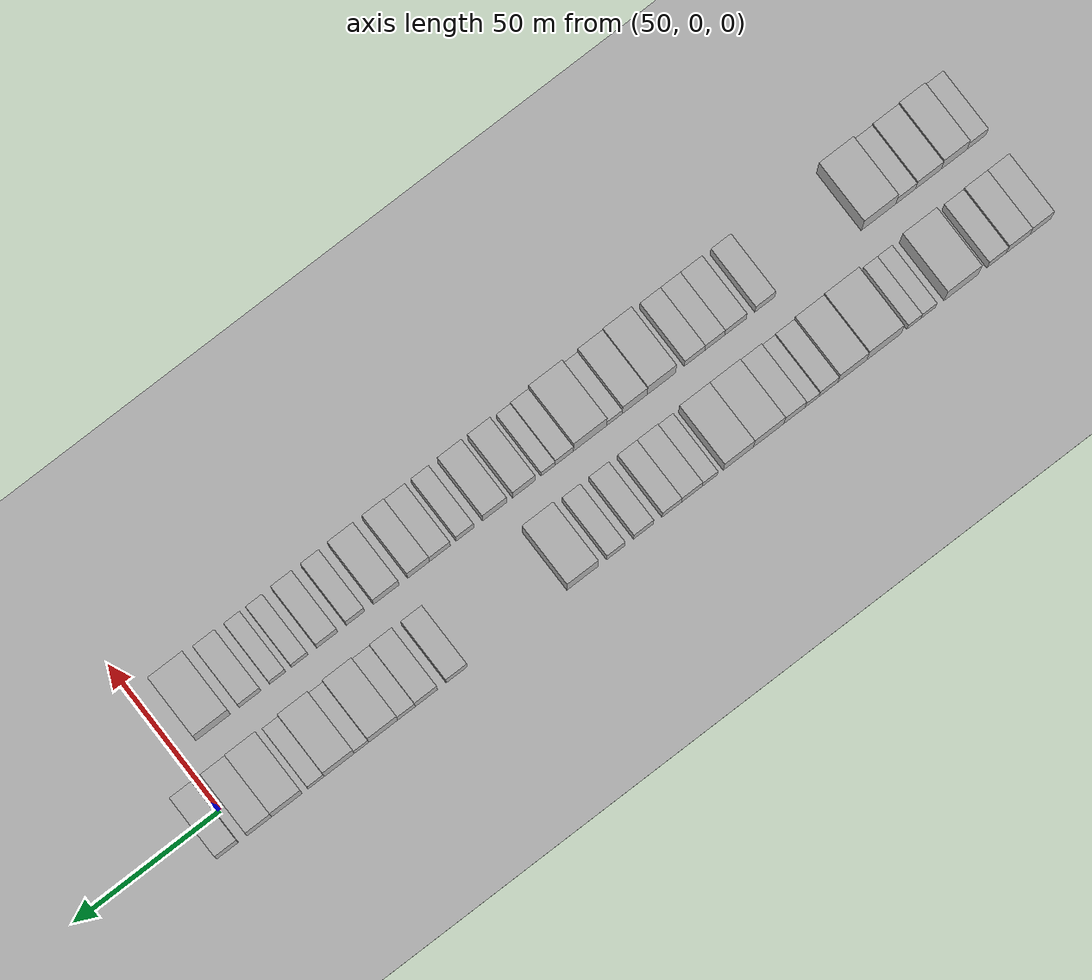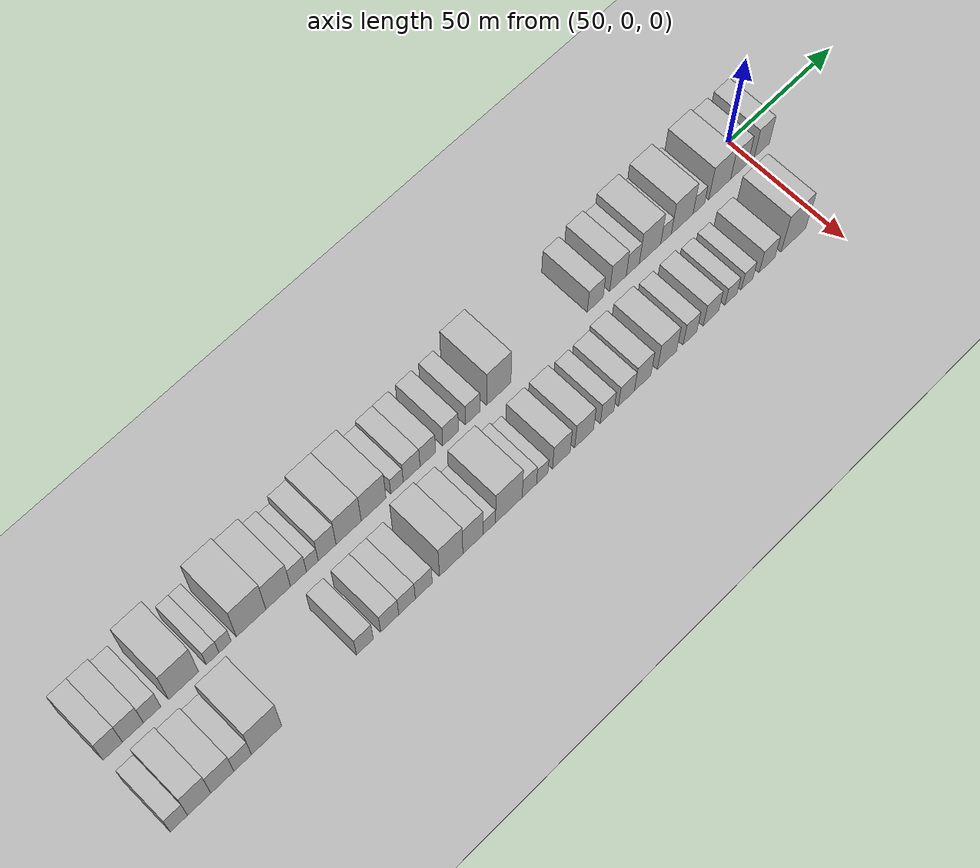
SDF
<sdf version="1.6">
 <world name="default">
  <include><name>ground_plane_1</name><uri>model://HANNAS_ground_plane</uri></include>
  <include>
   <name>ground_plane_2</name>
   <uri>model://HANNAS_ground_plane</uri>
   <pose>100 0 0  0 0 0</pose>
  </include>
  <model name="building_1">
   <static>1</static>
   <pose>50.0000 -274.2942 0 0.000000 0.000000 0.000000</pose>
   <link name="link">
    <pose>0 0 9.00 0 0 0</pose>
    <collision name="collision"><geometry><box><size>20.0000 7.4115 18.0000</size></box></geometry></collision>
    <visual name="visual">
     <cast_shadows>0</cast_shadows>
     <geometry><box><size>20.0000 7.4115 18.0000</size></box></geometry>
     <material>
      <script>
       <uri>model://HANNAS_wall/materials/scripts</uri>
       <uri>model://HANNAS_wall/materials/textures</uri>
       <name>vrc/HANNAS_wall</name>
      </script>
     </material>
    </visual>
   </link>
  </model>
  <model name="building_2">
   <static>1</static>
   <pose>50.0000 -266.5781 0 0.000000 0.000000 0.000000</pose>
   <link name="link">
    <pose>0 0 9.00 0 0 0</pose>
    <collision name="collision"><geometry><box><size>20.0000 8.0207 18.0000</size></box></geometry></collision>
    <visual name="visual">
     <cast_shadows>0</cast_shadows>
     <geometry><box><size>20.0000 8.0207 18.0000</size></box></geometry>
     <material>
      <script>
       <uri>model://HANNAS_wall/materials/scripts</uri>
       <uri>model://HANNAS_wall/materials/textures</uri>
       <name>vrc/HANNAS_wall</name>
      </script>
     </material>
    </visual>
   </link>
  </model>
  <model name="building_3">
   <static>1</static>
   <pose>50.0000 -259.1972 0 0.000000 0.000000 0.000000</pose>
   <link name="link">
    <pose>0 0 7.50 0 0 0</pose>
    <collision name="collision"><geometry><box><size>20.0000 6.7413 15.0000</size></box></geometry></collision>
    <visual name="visual">
     <cast_shadows>0</cast_shadows>
     <geometry><box><size>20.0000 6.7413 15.0000</size></box></geometry>
     <material>
      <script>
       <uri>model://HANNAS_wall/materials/scripts</uri>
       <uri>model://HANNAS_wall/materials/textures</uri>
       <name>vrc/HANNAS_wall</name>
      </script>
     </material>
    </visual>
   </link>
  </model>
  <model name="building_4">
   <static>1</static>
   <pose>50.0000 -246.9662 0 0.000000 0.000000 0.000000</pose>
   <link name="link">
    <pose>0 0 12.00 0 0 0</pose>
    <collision name="collision"><geometry><box><size>20.0000 11.7208 24.0000</size></box></geometry></collision>
    <visual name="visual">
     <cast_shadows>0</cast_shadows>
     <geometry><box><size>20.0000 11.7208 24.0000</size></box></geometry>
     <material>
      <script>
       <uri>model://HANNAS_wall/materials/scripts</uri>
       <uri>model://HANNAS_wall/materials/textures</uri>
       <name>vrc/HANNAS_wall</name>
      </script>
     </material>
    </visual>
   </link>
  </model>
  <model name="building_5">
   <static>1</static>
   <pose>50.0000 -235.5989 0 0.000000 0.000000 0.000000</pose>
   <link name="link">
    <pose>0 0 6.00 0 0 0</pose>
    <collision name="collision"><geometry><box><size>20.0000 5.0137 12.0000</size></box></geometry></collision>
    <visual name="visual">
     <cast_shadows>0</cast_shadows>
     <geometry><box><size>20.0000 5.0137 12.0000</size></box></geometry>
     <material>
      <script>
       <uri>model://HANNAS_wall/materials/scripts</uri>
       <uri>model://HANNAS_wall/materials/textures</uri>
       <name>vrc/HANNAS_wall</name>
      </script>
     </material>
    </visual>
   </link>
  </model>
  <model name="building_6">
   <static>1</static>
   <pose>50.0000 -230.6536 0 0.000000 0.000000 0.000000</pose>
   <link name="link">
    <pose>0 0 6.00 0 0 0</pose>
    <collision name="collision"><geometry><box><size>20.0000 4.8768 12.0000</size></box></geometry></collision>
    <visual name="visual">
     <cast_shadows>0</cast_shadows>
     <geometry><box><size>20.0000 4.8768 12.0000</size></box></geometry>
     <material>
      <script>
       <uri>model://HANNAS_wall/materials/scripts</uri>
       <uri>model://HANNAS_wall/materials/textures</uri>
       <name>vrc/HANNAS_wall</name>
      </script>
     </material>
    </visual>
   </link>
  </model>
  <model name="building_7">
   <static>1</static>
   <pose>50.0000 -220.2989 0 0.000000 0.000000 0.000000</pose>
   <link name="link">
    <pose>0 0 12.00 0 0 0</pose>
    <collision name="collision"><geometry><box><size>20.0000 11.8327 24.0000</size></box></geometry></collision>
    <visual name="visual">
     <cast_shadows>0</cast_shadows>
     <geometry><box><size>20.0000 11.8327 24.0000</size></box></geometry>
     <material>
      <script>
       <uri>model://HANNAS_wall/materials/scripts</uri>
       <uri>model://HANNAS_wall/materials/textures</uri>
       <name>vrc/HANNAS_wall</name>
      </script>
     </material>
    </visual>
   </link>
  </model>
  <model name="building_8">
   <static>1</static>
   <pose>50.0000 -209.4191 0 0.000000 0.000000 0.000000</pose>
   <link name="link">
    <pose>0 0 10.50 0 0 0</pose>
    <collision name="collision"><geometry><box><size>20.0000 9.9268 21.0000</size></box></geometry></collision>
    <visual name="visual">
     <cast_shadows>0</cast_shadows>
     <geometry><box><size>20.0000 9.9268 21.0000</size></box></geometry>
     <material>
      <script>
       <uri>model://HANNAS_wall/materials/scripts</uri>
       <uri>model://HANNAS_wall/materials/textures</uri>
       <name>vrc/HANNAS_wall</name>
      </script>
     </material>
    </visual>
   </link>
  </model>
  <model name="building_9">
   <static>1</static>
   <pose>50.0000 -201.1970 0 0.000000 0.000000 0.000000</pose>
   <link name="link">
    <pose>0 0 7.50 0 0 0</pose>
    <collision name="collision"><geometry><box><size>20.0000 6.5175 15.0000</size></box></geometry></collision>
    <visual name="visual">
     <cast_shadows>0</cast_shadows>
     <geometry><box><size>20.0000 6.5175 15.0000</size></box></geometry>
     <material>
      <script>
       <uri>model://HANNAS_wall/materials/scripts</uri>
       <uri>model://HANNAS_wall/materials/textures</uri>
       <name>vrc/HANNAS_wall</name>
      </script>
     </material>
    </visual>
   </link>
  </model>
  <model name="building_10">
   <static>1</static>
   <pose>50.0000 -195.5198 0 0.000000 0.000000 0.000000</pose>
   <link name="link">
    <pose>0 0 6.00 0 0 0</pose>
    <collision name="collision"><geometry><box><size>20.0000 4.8368 12.0000</size></box></geometry></collision>
    <visual name="visual">
     <cast_shadows>0</cast_shadows>
     <geometry><box><size>20.0000 4.8368 12.0000</size></box></geometry>
     <material>
      <script>
       <uri>model://HANNAS_wall/materials/scripts</uri>
       <uri>model://HANNAS_wall/materials/textures</uri>
       <name>vrc/HANNAS_wall</name>
      </script>
     </material>
    </visual>
   </link>
  </model>
  <model name="building_11">
   <static>1</static>
   <pose>50.0000 -189.4424 0 0.000000 0.000000 0.000000</pose>
   <link name="link">
    <pose>0 0 9.00 0 0 0</pose>
    <collision name="collision"><geometry><box><size>20.0000 7.3181 18.0000</size></box></geometry></collision>
    <visual name="visual">
     <cast_shadows>0</cast_shadows>
     <geometry><box><size>20.0000 7.3181 18.0000</size></box></geometry>
     <material>
      <script>
       <uri>model://HANNAS_wall/materials/scripts</uri>
       <uri>model://HANNAS_wall/materials/textures</uri>
       <name>vrc/HANNAS_wall</name>
      </script>
     </material>
    </visual>
   </link>
  </model>
  <model name="building_12">
   <static>1</static>
   <pose>50.0000 -180.5593 0 0.000000 0.000000 0.000000</pose>
   <link name="link">
    <pose>0 0 10.50 0 0 0</pose>
    <collision name="collision"><geometry><box><size>20.0000 10.4481 21.0000</size></box></geometry></collision>
    <visual name="visual">
     <cast_shadows>0</cast_shadows>
     <geometry><box><size>20.0000 10.4481 21.0000</size></box></geometry>
     <material>
      <script>
       <uri>model://HANNAS_wall/materials/scripts</uri>
       <uri>model://HANNAS_wall/materials/textures</uri>
       <name>vrc/HANNAS_wall</name>
      </script>
     </material>
    </visual>
   </link>
  </model>
  <model name="building_13">
   <static>1</static>
   <pose>50.0000 -170.1561 0 0.000000 0.000000 0.000000</pose>
   <link name="link">
    <pose>0 0 10.50 0 0 0</pose>
    <collision name="collision"><geometry><box><size>20.0000 10.3582 21.0000</size></box></geometry></collision>
    <visual name="visual">
     <cast_shadows>0</cast_shadows>
     <geometry><box><size>20.0000 10.3582 21.0000</size></box></geometry>
     <material>
      <script>
       <uri>model://HANNAS_wall/materials/scripts</uri>
       <uri>model://HANNAS_wall/materials/textures</uri>
       <name>vrc/HANNAS_wall</name>
      </script>
     </material>
    </visual>
   </link>
  </model>
  <model name="building_14">
   <static>1</static>
   <pose>50.0000 -160.3472 0 0.000000 0.000000 0.000000</pose>
   <link name="link">
    <pose>0 0 6.00 0 0 0</pose>
    <collision name="collision"><geometry><box><size>20.0000 5.2596 12.0000</size></box></geometry></collision>
    <visual name="visual">
     <cast_shadows>0</cast_shadows>
     <geometry><box><size>20.0000 5.2596 12.0000</size></box></geometry>
     <material>
      <script>
       <uri>model://HANNAS_wall/materials/scripts</uri>
       <uri>model://HANNAS_wall/materials/textures</uri>
       <name>vrc/HANNAS_wall</name>
      </script>
     </material>
    </visual>
   </link>
  </model>
  <model name="building_15">
   <static>1</static>
   <pose>50.0000 -154.1600 0 0.000000 0.000000 0.000000</pose>
   <link name="link">
    <pose>0 0 7.50 0 0 0</pose>
    <collision name="collision"><geometry><box><size>20.0000 7.1147 15.0000</size></box></geometry></collision>
    <visual name="visual">
     <cast_shadows>0</cast_shadows>
     <geometry><box><size>20.0000 7.1147 15.0000</size></box></geometry>
     <material>
      <script>
       <uri>model://HANNAS_wall/materials/scripts</uri>
       <uri>model://HANNAS_wall/materials/textures</uri>
       <name>vrc/HANNAS_wall</name>
      </script>
     </material>
    </visual>
   </link>
  </model>
  <model name="building_16">
   <static>1</static>
   <pose>50.0000 -147.2636 0 0.000000 0.000000 0.000000</pose>
   <link name="link">
    <pose>0 0 7.50 0 0 0</pose>
    <collision name="collision"><geometry><box><size>20.0000 6.6780 15.0000</size></box></geometry></collision>
    <visual name="visual">
     <cast_shadows>0</cast_shadows>
     <geometry><box><size>20.0000 6.6780 15.0000</size></box></geometry>
     <material>
      <script>
       <uri>model://HANNAS_wall/materials/scripts</uri>
       <uri>model://HANNAS_wall/materials/textures</uri>
       <name>vrc/HANNAS_wall</name>
      </script>
     </material>
    </visual>
   </link>
  </model>
  <model name="building_17">
   <static>1</static>
   <pose>50.0000 -137.5323 0 0.000000 0.000000 0.000000</pose>
   <link name="link">
    <pose>0 0 7.50 0 0 0</pose>
    <collision name="collision"><geometry><box><size>20.0000 6.7847 15.0000</size></box></geometry></collision>
    <visual name="visual">
     <cast_shadows>0</cast_shadows>
     <geometry><box><size>20.0000 6.7847 15.0000</size></box></geometry>
     <material>
      <script>
       <uri>model://HANNAS_wall/materials/scripts</uri>
       <uri>model://HANNAS_wall/materials/textures</uri>
       <name>vrc/HANNAS_wall</name>
      </script>
     </material>
    </visual>
   </link>
  </model>
  <model name="building_18">
   <static>1</static>
   <pose>50.0000 -128.0251 0 0.000000 0.000000 0.000000</pose>
   <link name="link">
    <pose>0 0 7.50 0 0 0</pose>
    <collision name="collision"><geometry><box><size>20.0000 6.2296 15.0000</size></box></geometry></collision>
    <visual name="visual">
     <cast_shadows>0</cast_shadows>
     <geometry><box><size>20.0000 6.2296 15.0000</size></box></geometry>
     <material>
      <script>
       <uri>model://HANNAS_wall/materials/scripts</uri>
       <uri>model://HANNAS_wall/materials/textures</uri>
       <name>vrc/HANNAS_wall</name>
      </script>
     </material>
    </visual>
   </link>
  </model>
  <model name="building_19">
   <static>1</static>
   <pose>50.0000 -116.5922 0 0.000000 0.000000 0.000000</pose>
   <link name="link">
    <pose>0 0 12.00 0 0 0</pose>
    <collision name="collision"><geometry><box><size>20.0000 10.6363 24.0000</size></box></geometry></collision>
    <visual name="visual">
     <cast_shadows>0</cast_shadows>
     <geometry><box><size>20.0000 10.6363 24.0000</size></box></geometry>
     <material>
      <script>
       <uri>model://HANNAS_wall/materials/scripts</uri>
       <uri>model://HANNAS_wall/materials/textures</uri>
       <name>vrc/HANNAS_wall</name>
      </script>
     </material>
    </visual>
   </link>
  </model>
  <model name="building_20">
   <static>1</static>
   <pose>50.0000 -73.4680 0 0.000000 0.000000 0.000000</pose>
   <link name="link">
    <pose>0 0 7.50 0 0 0</pose>
    <collision name="collision"><geometry><box><size>20.0000 7.2040 15.0000</size></box></geometry></collision>
    <visual name="visual">
     <cast_shadows>0</cast_shadows>
     <geometry><box><size>20.0000 7.2040 15.0000</size></box></geometry>
     <material>
      <script>
       <uri>model://HANNAS_wall/materials/scripts</uri>
       <uri>model://HANNAS_wall/materials/textures</uri>
       <name>vrc/HANNAS_wall</name>
      </script>
     </material>
    </visual>
   </link>
  </model>
  <model name="building_21">
   <static>1</static>
   <pose>50.0000 -63.0588 0 0.000000 0.000000 0.000000</pose>
   <link name="link">
    <pose>0 0 9.00 0 0 0</pose>
    <collision name="collision"><geometry><box><size>20.0000 7.6144 18.0000</size></box></geometry></collision>
    <visual name="visual">
     <cast_shadows>0</cast_shadows>
     <geometry><box><size>20.0000 7.6144 18.0000</size></box></geometry>
     <material>
      <script>
       <uri>model://HANNAS_wall/materials/scripts</uri>
       <uri>model://HANNAS_wall/materials/textures</uri>
       <name>vrc/HANNAS_wall</name>
      </script>
     </material>
    </visual>
   </link>
  </model>
  <model name="building_22">
   <static>1</static>
   <pose>50.0000 -56.2513 0 0.000000 0.000000 0.000000</pose>
   <link name="link">
    <pose>0 0 7.50 0 0 0</pose>
    <collision name="collision"><geometry><box><size>20.0000 6.0006 15.0000</size></box></geometry></collision>
    <visual name="visual">
     <cast_shadows>0</cast_shadows>
     <geometry><box><size>20.0000 6.0006 15.0000</size></box></geometry>
     <material>
      <script>
       <uri>model://HANNAS_wall/materials/scripts</uri>
       <uri>model://HANNAS_wall/materials/textures</uri>
       <name>vrc/HANNAS_wall</name>
      </script>
     </material>
    </visual>
   </link>
  </model>
  <model name="building_23">
   <static>1</static>
   <pose>50.0000 -48.2686 0 0.000000 0.000000 0.000000</pose>
   <link name="link">
    <pose>0 0 10.50 0 0 0</pose>
    <collision name="collision"><geometry><box><size>20.0000 9.9647 21.0000</size></box></geometry></collision>
    <visual name="visual">
     <cast_shadows>0</cast_shadows>
     <geometry><box><size>20.0000 9.9647 21.0000</size></box></geometry>
     <material>
      <script>
       <uri>model://HANNAS_wall/materials/scripts</uri>
       <uri>model://HANNAS_wall/materials/textures</uri>
       <name>vrc/HANNAS_wall</name>
      </script>
     </material>
    </visual>
   </link>
  </model>
  <model name="building_24">
   <static>1</static>
   <pose>50.0000 -40.8244 0 0.000000 0.000000 0.000000</pose>
   <link name="link">
    <pose>0 0 6.00 0 0 0</pose>
    <collision name="collision"><geometry><box><size>20.0000 4.9237 12.0000</size></box></geometry></collision>
    <visual name="visual">
     <cast_shadows>0</cast_shadows>
     <geometry><box><size>20.0000 4.9237 12.0000</size></box></geometry>
     <material>
      <script>
       <uri>model://HANNAS_wall/materials/scripts</uri>
       <uri>model://HANNAS_wall/materials/textures</uri>
       <name>vrc/HANNAS_wall</name>
      </script>
     </material>
    </visual>
   </link>
  </model>
  <model name="building_25">
   <static>1</static>
   <pose>50.0000 -33.2198 0 0.000000 0.000000 0.000000</pose>
   <link name="link">
    <pose>0 0 10.50 0 0 0</pose>
    <collision name="collision"><geometry><box><size>20.0000 10.2856 21.0000</size></box></geometry></collision>
    <visual name="visual">
     <cast_shadows>0</cast_shadows>
     <geometry><box><size>20.0000 10.2856 21.0000</size></box></geometry>
     <material>
      <script>
       <uri>model://HANNAS_wall/materials/scripts</uri>
       <uri>model://HANNAS_wall/materials/textures</uri>
       <name>vrc/HANNAS_wall</name>
      </script>
     </material>
    </visual>
   </link>
  </model>
  <model name="building_26">
   <static>1</static>
   <pose>50.0000 -25.3277 0 0.000000 0.000000 0.000000</pose>
   <link name="link">
    <pose>0 0 6.00 0 0 0</pose>
    <collision name="collision"><geometry><box><size>20.0000 5.4986 12.0000</size></box></geometry></collision>
    <visual name="visual">
     <cast_shadows>0</cast_shadows>
     <geometry><box><size>20.0000 5.4986 12.0000</size></box></geometry>
     <material>
      <script>
       <uri>model://HANNAS_wall/materials/scripts</uri>
       <uri>model://HANNAS_wall/materials/textures</uri>
       <name>vrc/HANNAS_wall</name>
      </script>
     </material>
    </visual>
   </link>
  </model>
  <model name="building_27">
   <static>1</static>
   <pose>50.0000 -15.3713 0 0.000000 0.000000 0.000000</pose>
   <link name="link">
    <pose>0 0 10.50 0 0 0</pose>
    <collision name="collision"><geometry><box><size>20.0000 10.4143 21.0000</size></box></geometry></collision>
    <visual name="visual">
     <cast_shadows>0</cast_shadows>
     <geometry><box><size>20.0000 10.4143 21.0000</size></box></geometry>
     <material>
      <script>
       <uri>model://HANNAS_wall/materials/scripts</uri>
       <uri>model://HANNAS_wall/materials/textures</uri>
       <name>vrc/HANNAS_wall</name>
      </script>
     </material>
    </visual>
   </link>
  </model>
  <model name="building_28">
   <static>1</static>
   <pose>50.0000 -5.9716 0 0.000000 0.000000 0.000000</pose>
   <link name="link">
    <pose>0 0 9.00 0 0 0</pose>
    <collision name="collision"><geometry><box><size>20.0000 8.3850 18.0000</size></box></geometry></collision>
    <visual name="visual">
     <cast_shadows>0</cast_shadows>
     <geometry><box><size>20.0000 8.3850 18.0000</size></box></geometry>
     <material>
      <script>
       <uri>model://HANNAS_wall/materials/scripts</uri>
       <uri>model://HANNAS_wall/materials/textures</uri>
       <name>vrc/HANNAS_wall</name>
      </script>
     </material>
    </visual>
   </link>
  </model>
  <model name="building_29">
   <static>1</static>
   <pose>50.0000 4.9267 0 0.000000 0.000000 0.000000</pose>
   <link name="link">
    <pose>0 0 9.00 0 0 0</pose>
    <collision name="collision"><geometry><box><size>20.0000 7.4116 18.0000</size></box></geometry></collision>
    <visual name="visual">
     <cast_shadows>0</cast_shadows>
     <geometry><box><size>20.0000 7.4116 18.0000</size></box></geometry>
     <material>
      <script>
       <uri>model://HANNAS_wall/materials/scripts</uri>
       <uri>model://HANNAS_wall/materials/textures</uri>
       <name>vrc/HANNAS_wall</name>
      </script>
     </material>
    </visual>
   </link>
  </model>
  <model name="building_59">
   <static>1</static>
   <pose>79.0000 -274.7064 0 0.000000 0.000000 0.000000</pose>
   <link name="link">
    <pose>0 0 7.50 0 0 0</pose>
    <collision name="collision"><geometry><box><size>20.0000 6.5872 15.0000</size></box></geometry></collision>
    <visual name="visual">
     <cast_shadows>0</cast_shadows>
     <geometry><box><size>20.0000 6.5872 15.0000</size></box></geometry>
     <material>
      <script>
       <uri>model://HANNAS_wall/materials/scripts</uri>
       <uri>model://HANNAS_wall/materials/textures</uri>
       <name>vrc/HANNAS_wall</name>
      </script>
     </material>
    </visual>
   </link>
  </model>
  <model name="building_60">
   <static>1</static>
   <pose>79.0000 -266.9668 0 0.000000 0.000000 0.000000</pose>
   <link name="link">
    <pose>0 0 10.50 0 0 0</pose>
    <collision name="collision"><geometry><box><size>20.0000 8.8920 21.0000</size></box></geometry></collision>
    <visual name="visual">
     <cast_shadows>0</cast_shadows>
     <geometry><box><size>20.0000 8.8920 21.0000</size></box></geometry>
     <material>
      <script>
       <uri>model://HANNAS_wall/materials/scripts</uri>
       <uri>model://HANNAS_wall/materials/textures</uri>
       <name>vrc/HANNAS_wall</name>
      </script>
     </material>
    </visual>
   </link>
  </model>
  <model name="building_61">
   <static>1</static>
   <pose>79.0000 -258.0597 0 0.000000 0.000000 0.000000</pose>
   <link name="link">
    <pose>0 0 9.00 0 0 0</pose>
    <collision name="collision"><geometry><box><size>20.0000 8.9222 18.0000</size></box></geometry></collision>
    <visual name="visual">
     <cast_shadows>0</cast_shadows>
     <geometry><box><size>20.0000 8.9222 18.0000</size></box></geometry>
     <material>
      <script>
       <uri>model://HANNAS_wall/materials/scripts</uri>
       <uri>model://HANNAS_wall/materials/textures</uri>
       <name>vrc/HANNAS_wall</name>
      </script>
     </material>
    </visual>
   </link>
  </model>
  <model name="building_62">
   <static>1</static>
   <pose>79.0000 -250.1834 0 0.000000 0.000000 0.000000</pose>
   <link name="link">
    <pose>0 0 7.50 0 0 0</pose>
    <collision name="collision"><geometry><box><size>20.0000 6.8305 15.0000</size></box></geometry></collision>
    <visual name="visual">
     <cast_shadows>0</cast_shadows>
     <geometry><box><size>20.0000 6.8305 15.0000</size></box></geometry>
     <material>
      <script>
       <uri>model://HANNAS_wall/materials/scripts</uri>
       <uri>model://HANNAS_wall/materials/textures</uri>
       <name>vrc/HANNAS_wall</name>
      </script>
     </material>
    </visual>
   </link>
  </model>
  <model name="building_63">
   <static>1</static>
   <pose>79.0000 -240.8535 0 0.000000 0.000000 0.000000</pose>
   <link name="link">
    <pose>0 0 12.00 0 0 0</pose>
    <collision name="collision"><geometry><box><size>20.0000 11.8293 24.0000</size></box></geometry></collision>
    <visual name="visual">
     <cast_shadows>0</cast_shadows>
     <geometry><box><size>20.0000 11.8293 24.0000</size></box></geometry>
     <material>
      <script>
       <uri>model://HANNAS_wall/materials/scripts</uri>
       <uri>model://HANNAS_wall/materials/textures</uri>
       <name>vrc/HANNAS_wall</name>
      </script>
     </material>
    </visual>
   </link>
  </model>
  <model name="building_64">
   <static>1</static>
   <pose>79.0000 -201.6600 0 0.000000 0.000000 0.000000</pose>
   <link name="link">
    <pose>0 0 7.50 0 0 0</pose>
    <collision name="collision"><geometry><box><size>20.0000 6.8525 15.0000</size></box></geometry></collision>
    <visual name="visual">
     <cast_shadows>0</cast_shadows>
     <geometry><box><size>20.0000 6.8525 15.0000</size></box></geometry>
     <material>
      <script>
       <uri>model://HANNAS_wall/materials/scripts</uri>
       <uri>model://HANNAS_wall/materials/textures</uri>
       <name>vrc/HANNAS_wall</name>
      </script>
     </material>
    </visual>
   </link>
  </model>
  <model name="building_65">
   <static>1</static>
   <pose>79.0000 -191.5080 0 0.000000 0.000000 0.000000</pose>
   <link name="link">
    <pose>0 0 7.50 0 0 0</pose>
    <collision name="collision"><geometry><box><size>20.0000 7.4514 15.0000</size></box></geometry></collision>
    <visual name="visual">
     <cast_shadows>0</cast_shadows>
     <geometry><box><size>20.0000 7.4514 15.0000</size></box></geometry>
     <material>
      <script>
       <uri>model://HANNAS_wall/materials/scripts</uri>
       <uri>model://HANNAS_wall/materials/textures</uri>
       <name>vrc/HANNAS_wall</name>
      </script>
     </material>
    </visual>
   </link>
  </model>
  <model name="building_66">
   <static>1</static>
   <pose>79.0000 -184.3736 0 0.000000 0.000000 0.000000</pose>
   <link name="link">
    <pose>0 0 7.50 0 0 0</pose>
    <collision name="collision"><geometry><box><size>20.0000 6.8174 15.0000</size></box></geometry></collision>
    <visual name="visual">
     <cast_shadows>0</cast_shadows>
     <geometry><box><size>20.0000 6.8174 15.0000</size></box></geometry>
     <material>
      <script>
       <uri>model://HANNAS_wall/materials/scripts</uri>
       <uri>model://HANNAS_wall/materials/textures</uri>
       <name>vrc/HANNAS_wall</name>
      </script>
     </material>
    </visual>
   </link>
  </model>
  <model name="building_67">
   <static>1</static>
   <pose>79.0000 -177.4428 0 0.000000 0.000000 0.000000</pose>
   <link name="link">
    <pose>0 0 7.50 0 0 0</pose>
    <collision name="collision"><geometry><box><size>20.0000 7.0442 15.0000</size></box></geometry></collision>
    <visual name="visual">
     <cast_shadows>0</cast_shadows>
     <geometry><box><size>20.0000 7.0442 15.0000</size></box></geometry>
     <material>
      <script>
       <uri>model://HANNAS_wall/materials/scripts</uri>
       <uri>model://HANNAS_wall/materials/textures</uri>
       <name>vrc/HANNAS_wall</name>
      </script>
     </material>
    </visual>
   </link>
  </model>
  <model name="building_68">
   <static>1</static>
   <pose>79.0000 -166.0194 0 0.000000 0.000000 0.000000</pose>
   <link name="link">
    <pose>0 0 12.00 0 0 0</pose>
    <collision name="collision"><geometry><box><size>20.0000 9.8025 24.0000</size></box></geometry></collision>
    <visual name="visual">
     <cast_shadows>0</cast_shadows>
     <geometry><box><size>20.0000 9.8025 24.0000</size></box></geometry>
     <material>
      <script>
       <uri>model://HANNAS_wall/materials/scripts</uri>
       <uri>model://HANNAS_wall/materials/textures</uri>
       <name>vrc/HANNAS_wall</name>
      </script>
     </material>
    </visual>
   </link>
  </model>
  <model name="building_69">
   <static>1</static>
   <pose>79.0000 -156.8527 0 0.000000 0.000000 0.000000</pose>
   <link name="link">
    <pose>0 0 10.50 0 0 0</pose>
    <collision name="collision"><geometry><box><size>20.0000 8.5308 21.0000</size></box></geometry></collision>
    <visual name="visual">
     <cast_shadows>0</cast_shadows>
     <geometry><box><size>20.0000 8.5308 21.0000</size></box></geometry>
     <material>
      <script>
       <uri>model://HANNAS_wall/materials/scripts</uri>
       <uri>model://HANNAS_wall/materials/textures</uri>
       <name>vrc/HANNAS_wall</name>
      </script>
     </material>
    </visual>
   </link>
  </model>
  <model name="building_70">
   <static>1</static>
   <pose>79.0000 -149.9174 0 0.000000 0.000000 0.000000</pose>
   <link name="link">
    <pose>0 0 6.00 0 0 0</pose>
    <collision name="collision"><geometry><box><size>20.0000 5.3398 12.0000</size></box></geometry></collision>
    <visual name="visual">
     <cast_shadows>0</cast_shadows>
     <geometry><box><size>20.0000 5.3398 12.0000</size></box></geometry>
     <material>
      <script>
       <uri>model://HANNAS_wall/materials/scripts</uri>
       <uri>model://HANNAS_wall/materials/textures</uri>
       <name>vrc/HANNAS_wall</name>
      </script>
     </material>
    </visual>
   </link>
  </model>
  <model name="building_71">
   <static>1</static>
   <pose>79.0000 -141.5311 0 0.000000 0.000000 0.000000</pose>
   <link name="link">
    <pose>0 0 12.00 0 0 0</pose>
    <collision name="collision"><geometry><box><size>20.0000 11.4328 24.0000</size></box></geometry></collision>
    <visual name="visual">
     <cast_shadows>0</cast_shadows>
     <geometry><box><size>20.0000 11.4328 24.0000</size></box></geometry>
     <material>
      <script>
       <uri>model://HANNAS_wall/materials/scripts</uri>
       <uri>model://HANNAS_wall/materials/textures</uri>
       <name>vrc/HANNAS_wall</name>
      </script>
     </material>
    </visual>
   </link>
  </model>
  <model name="building_72">
   <static>1</static>
   <pose>79.0000 -132.7024 0 0.000000 0.000000 0.000000</pose>
   <link name="link">
    <pose>0 0 7.50 0 0 0</pose>
    <collision name="collision"><geometry><box><size>20.0000 6.2246 15.0000</size></box></geometry></collision>
    <visual name="visual">
     <cast_shadows>0</cast_shadows>
     <geometry><box><size>20.0000 6.2246 15.0000</size></box></geometry>
     <material>
      <script>
       <uri>model://HANNAS_wall/materials/scripts</uri>
       <uri>model://HANNAS_wall/materials/textures</uri>
       <name>vrc/HANNAS_wall</name>
      </script>
     </material>
    </visual>
   </link>
  </model>
  <model name="building_73">
   <static>1</static>
   <pose>79.0000 -127.1295 0 0.000000 0.000000 0.000000</pose>
   <link name="link">
    <pose>0 0 6.00 0 0 0</pose>
    <collision name="collision"><geometry><box><size>20.0000 4.9212 12.0000</size></box></geometry></collision>
    <visual name="visual">
     <cast_shadows>0</cast_shadows>
     <geometry><box><size>20.0000 4.9212 12.0000</size></box></geometry>
     <material>
      <script>
       <uri>model://HANNAS_wall/materials/scripts</uri>
       <uri>model://HANNAS_wall/materials/textures</uri>
       <name>vrc/HANNAS_wall</name>
      </script>
     </material>
    </visual>
   </link>
  </model>
  <model name="building_74">
   <static>1</static>
   <pose>79.0000 -118.7900 0 0.000000 0.000000 0.000000</pose>
   <link name="link">
    <pose>0 0 9.00 0 0 0</pose>
    <collision name="collision"><geometry><box><size>20.0000 7.7578 18.0000</size></box></geometry></collision>
    <visual name="visual">
     <cast_shadows>0</cast_shadows>
     <geometry><box><size>20.0000 7.7578 18.0000</size></box></geometry>
     <material>
      <script>
       <uri>model://HANNAS_wall/materials/scripts</uri>
       <uri>model://HANNAS_wall/materials/textures</uri>
       <name>vrc/HANNAS_wall</name>
      </script>
     </material>
    </visual>
   </link>
  </model>
  <model name="building_75">
   <static>1</static>
   <pose>79.0000 -108.7660 0 0.000000 0.000000 0.000000</pose>
   <link name="link">
    <pose>0 0 9.00 0 0 0</pose>
    <collision name="collision"><geometry><box><size>20.0000 8.2902 18.0000</size></box></geometry></collision>
    <visual name="visual">
     <cast_shadows>0</cast_shadows>
     <geometry><box><size>20.0000 8.2902 18.0000</size></box></geometry>
     <material>
      <script>
       <uri>model://HANNAS_wall/materials/scripts</uri>
       <uri>model://HANNAS_wall/materials/textures</uri>
       <name>vrc/HANNAS_wall</name>
      </script>
     </material>
    </visual>
   </link>
  </model>
  <model name="building_76">
   <static>1</static>
   <pose>79.0000 -98.5767 0 0.000000 0.000000 0.000000</pose>
   <link name="link">
    <pose>0 0 7.50 0 0 0</pose>
    <collision name="collision"><geometry><box><size>20.0000 6.0884 15.0000</size></box></geometry></collision>
    <visual name="visual">
     <cast_shadows>0</cast_shadows>
     <geometry><box><size>20.0000 6.0884 15.0000</size></box></geometry>
     <material>
      <script>
       <uri>model://HANNAS_wall/materials/scripts</uri>
       <uri>model://HANNAS_wall/materials/textures</uri>
       <name>vrc/HANNAS_wall</name>
      </script>
     </material>
    </visual>
   </link>
  </model>
  <model name="building_77">
   <static>1</static>
   <pose>79.0000 -89.9548 0 0.000000 0.000000 0.000000</pose>
   <link name="link">
    <pose>0 0 7.50 0 0 0</pose>
    <collision name="collision"><geometry><box><size>20.0000 7.1555 15.0000</size></box></geometry></collision>
    <visual name="visual">
     <cast_shadows>0</cast_shadows>
     <geometry><box><size>20.0000 7.1555 15.0000</size></box></geometry>
     <material>
      <script>
       <uri>model://HANNAS_wall/materials/scripts</uri>
       <uri>model://HANNAS_wall/materials/textures</uri>
       <name>vrc/HANNAS_wall</name>
      </script>
     </material>
    </visual>
   </link>
  </model>
  <model name="building_78">
   <static>1</static>
   <pose>79.0000 -82.6482 0 0.000000 0.000000 0.000000</pose>
   <link name="link">
    <pose>0 0 9.00 0 0 0</pose>
    <collision name="collision"><geometry><box><size>20.0000 7.4578 18.0000</size></box></geometry></collision>
    <visual name="visual">
     <cast_shadows>0</cast_shadows>
     <geometry><box><size>20.0000 7.4578 18.0000</size></box></geometry>
     <material>
      <script>
       <uri>model://HANNAS_wall/materials/scripts</uri>
       <uri>model://HANNAS_wall/materials/textures</uri>
       <name>vrc/HANNAS_wall</name>
      </script>
     </material>
    </visual>
   </link>
  </model>
  <model name="building_79">
   <static>1</static>
   <pose>79.0000 -71.5489 0 0.000000 0.000000 0.000000</pose>
   <link name="link">
    <pose>0 0 9.00 0 0 0</pose>
    <collision name="collision"><geometry><box><size>20.0000 8.7408 18.0000</size></box></geometry></collision>
    <visual name="visual">
     <cast_shadows>0</cast_shadows>
     <geometry><box><size>20.0000 8.7408 18.0000</size></box></geometry>
     <material>
      <script>
       <uri>model://HANNAS_wall/materials/scripts</uri>
       <uri>model://HANNAS_wall/materials/textures</uri>
       <name>vrc/HANNAS_wall</name>
      </script>
     </material>
    </visual>
   </link>
  </model>
  <model name="building_80">
   <static>1</static>
   <pose>79.0000 -61.0324 0 0.000000 0.000000 0.000000</pose>
   <link name="link">
    <pose>0 0 7.50 0 0 0</pose>
    <collision name="collision"><geometry><box><size>20.0000 6.2921 15.0000</size></box></geometry></collision>
    <visual name="visual">
     <cast_shadows>0</cast_shadows>
     <geometry><box><size>20.0000 6.2921 15.0000</size></box></geometry>
     <material>
      <script>
       <uri>model://HANNAS_wall/materials/scripts</uri>
       <uri>model://HANNAS_wall/materials/textures</uri>
       <name>vrc/HANNAS_wall</name>
      </script>
     </material>
    </visual>
   </link>
  </model>
  <model name="building_81">
   <static>1</static>
   <pose>79.0000 -51.3157 0 0.000000 0.000000 0.000000</pose>
   <link name="link">
    <pose>0 0 7.50 0 0 0</pose>
    <collision name="collision"><geometry><box><size>20.0000 7.1412 15.0000</size></box></geometry></collision>
    <visual name="visual">
     <cast_shadows>0</cast_shadows>
     <geometry><box><size>20.0000 7.1412 15.0000</size></box></geometry>
     <material>
      <script>
       <uri>model://HANNAS_wall/materials/scripts</uri>
       <uri>model://HANNAS_wall/materials/textures</uri>
       <name>vrc/HANNAS_wall</name>
      </script>
     </material>
    </visual>
   </link>
  </model>
  <model name="building_82">
   <static>1</static>
   <pose>79.0000 -41.9321 0 0.000000 0.000000 0.000000</pose>
   <link name="link">
    <pose>0 0 6.00 0 0 0</pose>
    <collision name="collision"><geometry><box><size>20.0000 5.6260 12.0000</size></box></geometry></collision>
    <visual name="visual">
     <cast_shadows>0</cast_shadows>
     <geometry><box><size>20.0000 5.6260 12.0000</size></box></geometry>
     <material>
      <script>
       <uri>model://HANNAS_wall/materials/scripts</uri>
       <uri>model://HANNAS_wall/materials/textures</uri>
       <name>vrc/HANNAS_wall</name>
      </script>
     </material>
    </visual>
   </link>
  </model>
  <model name="building_83">
   <static>1</static>
   <pose>79.0000 -34.3874 0 0.000000 0.000000 0.000000</pose>
   <link name="link">
    <pose>0 0 6.00 0 0 0</pose>
    <collision name="collision"><geometry><box><size>20.0000 5.4634 12.0000</size></box></geometry></collision>
    <visual name="visual">
     <cast_shadows>0</cast_shadows>
     <geometry><box><size>20.0000 5.4634 12.0000</size></box></geometry>
     <material>
      <script>
       <uri>model://HANNAS_wall/materials/scripts</uri>
       <uri>model://HANNAS_wall/materials/textures</uri>
       <name>vrc/HANNAS_wall</name>
      </script>
     </material>
    </visual>
   </link>
  </model>
  <model name="building_84">
   <static>1</static>
   <pose>79.0000 -24.9360 0 0.000000 0.000000 0.000000</pose>
   <link name="link">
    <pose>0 0 7.50 0 0 0</pose>
    <collision name="collision"><geometry><box><size>20.0000 7.4394 15.0000</size></box></geometry></collision>
    <visual name="visual">
     <cast_shadows>0</cast_shadows>
     <geometry><box><size>20.0000 7.4394 15.0000</size></box></geometry>
     <material>
      <script>
       <uri>model://HANNAS_wall/materials/scripts</uri>
       <uri>model://HANNAS_wall/materials/textures</uri>
       <name>vrc/HANNAS_wall</name>
      </script>
     </material>
    </visual>
   </link>
  </model>
  <model name="building_85">
   <static>1</static>
   <pose>79.0000 -12.3335 0 0.000000 0.000000 0.000000</pose>
   <link name="link">
    <pose>0 0 12.00 0 0 0</pose>
    <collision name="collision"><geometry><box><size>20.0000 11.7656 24.0000</size></box></geometry></collision>
    <visual name="visual">
     <cast_shadows>0</cast_shadows>
     <geometry><box><size>20.0000 11.7656 24.0000</size></box></geometry>
     <material>
      <script>
       <uri>model://HANNAS_wall/materials/scripts</uri>
       <uri>model://HANNAS_wall/materials/textures</uri>
       <name>vrc/HANNAS_wall</name>
      </script>
     </material>
    </visual>
   </link>
  </model>
 </world>
</sdf>
